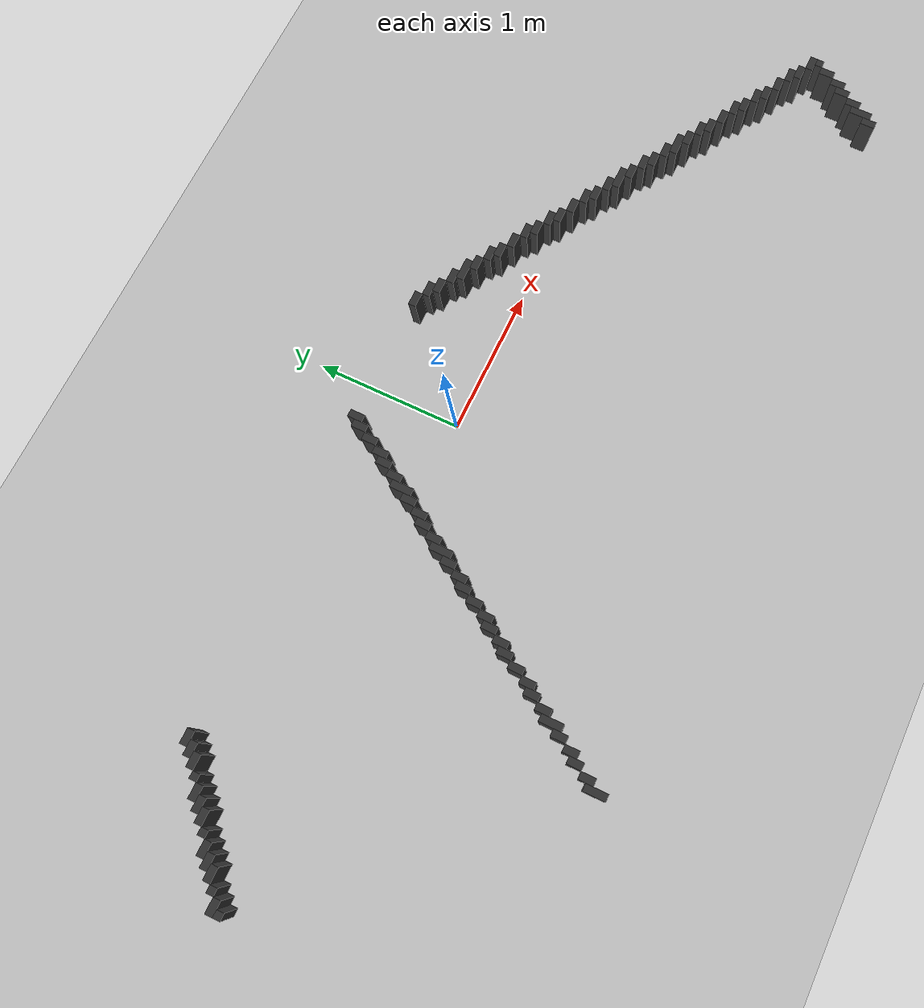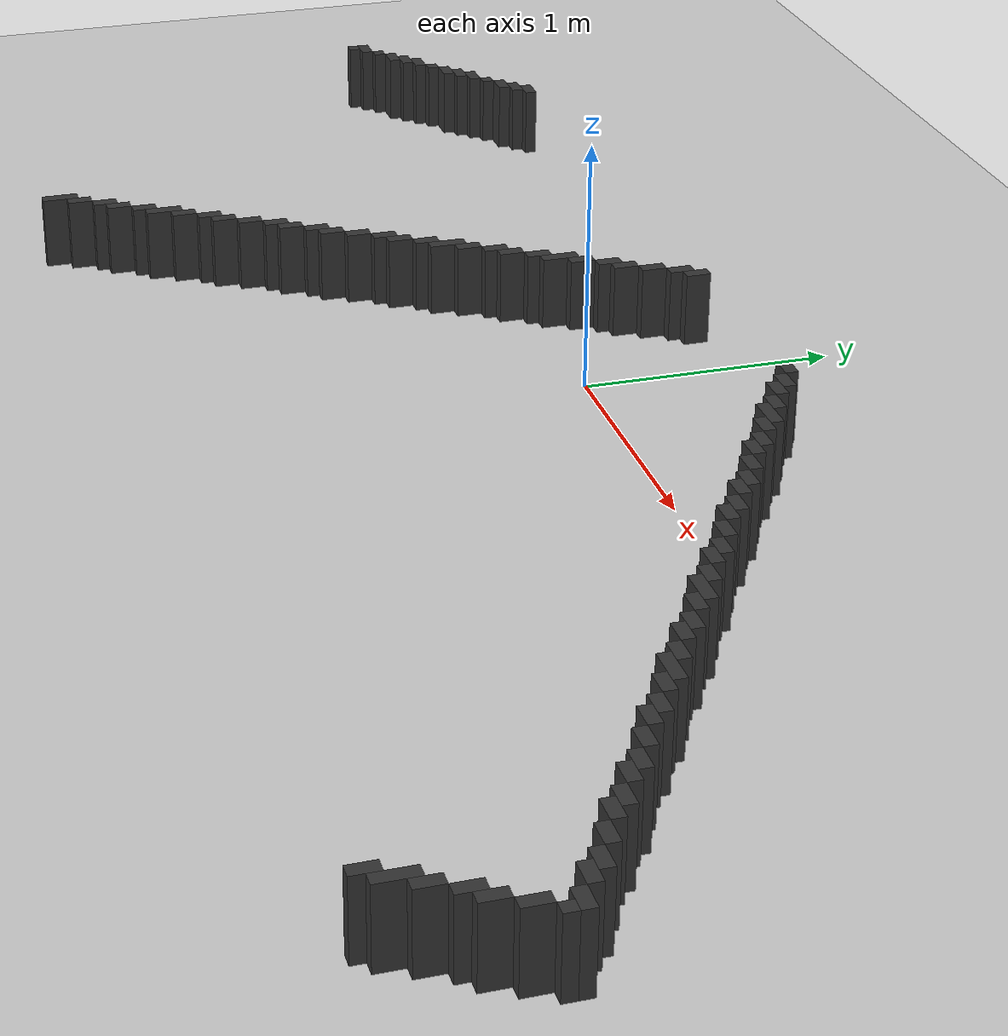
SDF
<sdf version="1.7">
 <world name="mapa_mundo">
  <model name="ground_plane">
   <static>true</static>
   <link name="link">
    <collision name="collision">
     <geometry><plane><normal>0 0 1</normal><size>10 10</size></plane></geometry>
     <surface><friction><ode><mu>100</mu><mu2>50</mu2></ode></friction></surface>
    </collision>
    <visual name="visual">
     <geometry><plane><normal>0 0 1</normal><size>10 10</size></plane></geometry>
     <material>
      <ambient>0.8 0.8 0.8 1</ambient>
      <diffuse>0.8 0.8 0.8 1</diffuse>
      <specular>0.8 0.8 0.8 1</specular>
     </material>
    </visual>
   </link>
  </model>
  <model name="wall_171">
   <static>true</static>
   <link name="link">
    <collision name="collision"><geometry><box><size>0.05 0.1 0.3</size></box></geometry></collision>
    <visual name="visual">
     <geometry><box><size>0.05 0.1 0.3</size></box></geometry>
     <material><ambient>0.2 0.2 0.2 1</ambient><diffuse>0.2 0.2 0.2 1</diffuse></material>
    </visual>
    <pose>-0.275 0.55 0.15 0 0 0</pose>
   </link>
  </model>
  <model name="wall_172">
   <static>true</static>
   <link name="link">
    <collision name="collision"><geometry><box><size>0.1 0.05 0.3</size></box></geometry></collision>
    <visual name="visual">
     <geometry><box><size>0.1 0.05 0.3</size></box></geometry>
     <material><ambient>0.2 0.2 0.2 1</ambient><diffuse>0.2 0.2 0.2 1</diffuse></material>
    </visual>
    <pose>0.6000000000000001 0.5750000000000001 0.15 0 0 0</pose>
   </link>
  </model>
  <model name="wall_173">
   <static>true</static>
   <link name="link">
    <collision name="collision"><geometry><box><size>0.1 0.05 0.3</size></box></geometry></collision>
    <visual name="visual">
     <geometry><box><size>0.1 0.05 0.3</size></box></geometry>
     <material><ambient>0.2 0.2 0.2 1</ambient><diffuse>0.2 0.2 0.2 1</diffuse></material>
    </visual>
    <pose>-2.45 0.525 0.15 0 0 0</pose>
   </link>
  </model>
  <model name="wall_174">
   <static>true</static>
   <link name="link">
    <collision name="collision"><geometry><box><size>0.05 0.1 0.3</size></box></geometry></collision>
    <visual name="visual">
     <geometry><box><size>0.05 0.1 0.3</size></box></geometry>
     <material><ambient>0.2 0.2 0.2 1</ambient><diffuse>0.2 0.2 0.2 1</diffuse></material>
    </visual>
    <pose>-0.325 0.5 0.15 0 0 0</pose>
   </link>
  </model>
  <model name="wall_175">
   <static>true</static>
   <link name="link">
    <collision name="collision"><geometry><box><size>0.1 0.05 0.3</size></box></geometry></collision>
    <visual name="visual">
     <geometry><box><size>0.1 0.05 0.3</size></box></geometry>
     <material><ambient>0.2 0.2 0.2 1</ambient><diffuse>0.2 0.2 0.2 1</diffuse></material>
    </visual>
    <pose>0.7000000000000001 0.525 0.15 0 0 0</pose>
   </link>
  </model>
  <model name="wall_176">
   <static>true</static>
   <link name="link">
    <collision name="collision"><geometry><box><size>0.1 0.05 0.3</size></box></geometry></collision>
    <visual name="visual">
     <geometry><box><size>0.1 0.05 0.3</size></box></geometry>
     <material><ambient>0.2 0.2 0.2 1</ambient><diffuse>0.2 0.2 0.2 1</diffuse></material>
    </visual>
    <pose>-2.5 0.47500000000000003 0.15 0 0 0</pose>
   </link>
  </model>
  <model name="wall_177">
   <static>true</static>
   <link name="link">
    <collision name="collision"><geometry><box><size>0.1 0.05 0.3</size></box></geometry></collision>
    <visual name="visual">
     <geometry><box><size>0.1 0.05 0.3</size></box></geometry>
     <material><ambient>0.2 0.2 0.2 1</ambient><diffuse>0.2 0.2 0.2 1</diffuse></material>
    </visual>
    <pose>0.75 0.47500000000000003 0.15 0 0 0</pose>
   </link>
  </model>
  <model name="wall_178">
   <static>true</static>
   <link name="link">
    <collision name="collision"><geometry><box><size>0.1 0.05 0.3</size></box></geometry></collision>
    <visual name="visual">
     <geometry><box><size>0.1 0.05 0.3</size></box></geometry>
     <material><ambient>0.2 0.2 0.2 1</ambient><diffuse>0.2 0.2 0.2 1</diffuse></material>
    </visual>
    <pose>-2.5500000000000003 0.42500000000000004 0.15 0 0 0</pose>
   </link>
  </model>
  <model name="wall_179">
   <static>true</static>
   <link name="link">
    <collision name="collision"><geometry><box><size>0.05 0.1 0.3</size></box></geometry></collision>
    <visual name="visual">
     <geometry><box><size>0.05 0.1 0.3</size></box></geometry>
     <material><ambient>0.2 0.2 0.2 1</ambient><diffuse>0.2 0.2 0.2 1</diffuse></material>
    </visual>
    <pose>-0.375 0.4 0.15 0 0 0</pose>
   </link>
  </model>
  <model name="wall_180">
   <static>true</static>
   <link name="link">
    <collision name="collision"><geometry><box><size>0.1 0.05 0.3</size></box></geometry></collision>
    <visual name="visual">
     <geometry><box><size>0.1 0.05 0.3</size></box></geometry>
     <material><ambient>0.2 0.2 0.2 1</ambient><diffuse>0.2 0.2 0.2 1</diffuse></material>
    </visual>
    <pose>0.8500000000000001 0.42500000000000004 0.15 0 0 0</pose>
   </link>
  </model>
  <model name="wall_181">
   <static>true</static>
   <link name="link">
    <collision name="collision"><geometry><box><size>0.05 0.05 0.3</size></box></geometry></collision>
    <visual name="visual">
     <geometry><box><size>0.05 0.05 0.3</size></box></geometry>
     <material><ambient>0.2 0.2 0.2 1</ambient><diffuse>0.2 0.2 0.2 1</diffuse></material>
    </visual>
    <pose>-2.625 0.375 0.15 0 0 0</pose>
   </link>
  </model>
  <model name="wall_182">
   <static>true</static>
   <link name="link">
    <collision name="collision">
     <geometry><box><size>0.15000000000000002 0.05 0.3</size></box></geometry>
    </collision>
    <visual name="visual">
     <geometry><box><size>0.15000000000000002 0.05 0.3</size></box></geometry>
     <material><ambient>0.2 0.2 0.2 1</ambient><diffuse>0.2 0.2 0.2 1</diffuse></material>
    </visual>
    <pose>0.925 0.375 0.15 0 0 0</pose>
   </link>
  </model>
  <model name="wall_183">
   <static>true</static>
   <link name="link">
    <collision name="collision"><geometry><box><size>0.1 0.05 0.3</size></box></geometry></collision>
    <visual name="visual">
     <geometry><box><size>0.1 0.05 0.3</size></box></geometry>
     <material><ambient>0.2 0.2 0.2 1</ambient><diffuse>0.2 0.2 0.2 1</diffuse></material>
    </visual>
    <pose>-2.7 0.325 0.15 0 0 0</pose>
   </link>
  </model>
  <model name="wall_184">
   <static>true</static>
   <link name="link">
    <collision name="collision"><geometry><box><size>0.05 0.1 0.3</size></box></geometry></collision>
    <visual name="visual">
     <geometry><box><size>0.05 0.1 0.3</size></box></geometry>
     <material><ambient>0.2 0.2 0.2 1</ambient><diffuse>0.2 0.2 0.2 1</diffuse></material>
    </visual>
    <pose>-0.42500000000000004 0.30000000000000004 0.15 0 0 0</pose>
   </link>
  </model>
  <model name="wall_185">
   <static>true</static>
   <link name="link">
    <collision name="collision"><geometry><box><size>0.1 0.05 0.3</size></box></geometry></collision>
    <visual name="visual">
     <geometry><box><size>0.1 0.05 0.3</size></box></geometry>
     <material><ambient>0.2 0.2 0.2 1</ambient><diffuse>0.2 0.2 0.2 1</diffuse></material>
    </visual>
    <pose>1.0 0.325 0.15 0 0 0</pose>
   </link>
  </model>
  <model name="wall_186">
   <static>true</static>
   <link name="link">
    <collision name="collision"><geometry><box><size>0.1 0.05 0.3</size></box></geometry></collision>
    <visual name="visual">
     <geometry><box><size>0.1 0.05 0.3</size></box></geometry>
     <material><ambient>0.2 0.2 0.2 1</ambient><diffuse>0.2 0.2 0.2 1</diffuse></material>
    </visual>
    <pose>-2.75 0.275 0.15 0 0 0</pose>
   </link>
  </model>
  <model name="wall_187">
   <static>true</static>
   <link name="link">
    <collision name="collision"><geometry><box><size>0.05 0.1 0.3</size></box></geometry></collision>
    <visual name="visual">
     <geometry><box><size>0.05 0.1 0.3</size></box></geometry>
     <material><ambient>0.2 0.2 0.2 1</ambient><diffuse>0.2 0.2 0.2 1</diffuse></material>
    </visual>
    <pose>-0.47500000000000003 0.25 0.15 0 0 0</pose>
   </link>
  </model>
  <model name="wall_188">
   <static>true</static>
   <link name="link">
    <collision name="collision"><geometry><box><size>0.1 0.05 0.3</size></box></geometry></collision>
    <visual name="visual">
     <geometry><box><size>0.1 0.05 0.3</size></box></geometry>
     <material><ambient>0.2 0.2 0.2 1</ambient><diffuse>0.2 0.2 0.2 1</diffuse></material>
    </visual>
    <pose>1.1 0.275 0.15 0 0 0</pose>
   </link>
  </model>
  <model name="wall_189">
   <static>true</static>
   <link name="link">
    <collision name="collision"><geometry><box><size>0.1 0.05 0.3</size></box></geometry></collision>
    <visual name="visual">
     <geometry><box><size>0.1 0.05 0.3</size></box></geometry>
     <material><ambient>0.2 0.2 0.2 1</ambient><diffuse>0.2 0.2 0.2 1</diffuse></material>
    </visual>
    <pose>-2.8000000000000003 0.225 0.15 0 0 0</pose>
   </link>
  </model>
  <model name="wall_190">
   <static>true</static>
   <link name="link">
    <collision name="collision"><geometry><box><size>0.1 0.05 0.3</size></box></geometry></collision>
    <visual name="visual">
     <geometry><box><size>0.1 0.05 0.3</size></box></geometry>
     <material><ambient>0.2 0.2 0.2 1</ambient><diffuse>0.2 0.2 0.2 1</diffuse></material>
    </visual>
    <pose>1.1500000000000001 0.225 0.15 0 0 0</pose>
   </link>
  </model>
  <model name="wall_191">
   <static>true</static>
   <link name="link">
    <collision name="collision"><geometry><box><size>0.05 0.05 0.3</size></box></geometry></collision>
    <visual name="visual">
     <geometry><box><size>0.05 0.05 0.3</size></box></geometry>
     <material><ambient>0.2 0.2 0.2 1</ambient><diffuse>0.2 0.2 0.2 1</diffuse></material>
    </visual>
    <pose>-2.875 0.17500000000000002 0.15 0 0 0</pose>
   </link>
  </model>
  <model name="wall_192">
   <static>true</static>
   <link name="link">
    <collision name="collision"><geometry><box><size>0.05 0.1 0.3</size></box></geometry></collision>
    <visual name="visual">
     <geometry><box><size>0.05 0.1 0.3</size></box></geometry>
     <material><ambient>0.2 0.2 0.2 1</ambient><diffuse>0.2 0.2 0.2 1</diffuse></material>
    </visual>
    <pose>-0.525 0.15000000000000002 0.15 0 0 0</pose>
   </link>
  </model>
  <model name="wall_193">
   <static>true</static>
   <link name="link">
    <collision name="collision"><geometry><box><size>0.1 0.05 0.3</size></box></geometry></collision>
    <visual name="visual">
     <geometry><box><size>0.1 0.05 0.3</size></box></geometry>
     <material><ambient>0.2 0.2 0.2 1</ambient><diffuse>0.2 0.2 0.2 1</diffuse></material>
    </visual>
    <pose>1.25 0.17500000000000002 0.15 0 0 0</pose>
   </link>
  </model>
  <model name="wall_194">
   <static>true</static>
   <link name="link">
    <collision name="collision"><geometry><box><size>0.1 0.05 0.3</size></box></geometry></collision>
    <visual name="visual">
     <geometry><box><size>0.1 0.05 0.3</size></box></geometry>
     <material><ambient>0.2 0.2 0.2 1</ambient><diffuse>0.2 0.2 0.2 1</diffuse></material>
    </visual>
    <pose>-2.95 0.125 0.15 0 0 0</pose>
   </link>
  </model>
  <model name="wall_195">
   <static>true</static>
   <link name="link">
    <collision name="collision">
     <geometry><box><size>0.05 0.15000000000000002 0.3</size></box></geometry>
    </collision>
    <visual name="visual">
     <geometry><box><size>0.05 0.15000000000000002 0.3</size></box></geometry>
     <material><ambient>0.2 0.2 0.2 1</ambient><diffuse>0.2 0.2 0.2 1</diffuse></material>
    </visual>
    <pose>-0.5750000000000001 0.07500000000000001 0.15 0 0 0</pose>
   </link>
  </model>
  <model name="wall_196">
   <static>true</static>
   <link name="link">
    <collision name="collision"><geometry><box><size>0.1 0.05 0.3</size></box></geometry></collision>
    <visual name="visual">
     <geometry><box><size>0.1 0.05 0.3</size></box></geometry>
     <material><ambient>0.2 0.2 0.2 1</ambient><diffuse>0.2 0.2 0.2 1</diffuse></material>
    </visual>
    <pose>1.35 0.125 0.15 0 0 0</pose>
   </link>
  </model>
  <model name="wall_197">
   <static>true</static>
   <link name="link">
    <collision name="collision"><geometry><box><size>0.1 0.05 0.3</size></box></geometry></collision>
    <visual name="visual">
     <geometry><box><size>0.1 0.05 0.3</size></box></geometry>
     <material><ambient>0.2 0.2 0.2 1</ambient><diffuse>0.2 0.2 0.2 1</diffuse></material>
    </visual>
    <pose>-3.0 0.07500000000000001 0.15 0 0 0</pose>
   </link>
  </model>
  <model name="wall_198">
   <static>true</static>
   <link name="link">
    <collision name="collision"><geometry><box><size>0.1 0.05 0.3</size></box></geometry></collision>
    <visual name="visual">
     <geometry><box><size>0.1 0.05 0.3</size></box></geometry>
     <material><ambient>0.2 0.2 0.2 1</ambient><diffuse>0.2 0.2 0.2 1</diffuse></material>
    </visual>
    <pose>1.4000000000000001 0.07500000000000001 0.15 0 0 0</pose>
   </link>
  </model>
  <model name="wall_199">
   <static>true</static>
   <link name="link">
    <collision name="collision"><geometry><box><size>0.1 0.05 0.3</size></box></geometry></collision>
    <visual name="visual">
     <geometry><box><size>0.1 0.05 0.3</size></box></geometry>
     <material><ambient>0.2 0.2 0.2 1</ambient><diffuse>0.2 0.2 0.2 1</diffuse></material>
    </visual>
    <pose>-3.0500000000000003 0.025 0.15 0 0 0</pose>
   </link>
  </model>
  <model name="wall_200">
   <static>true</static>
   <link name="link">
    <collision name="collision"><geometry><box><size>0.05 0.1 0.3</size></box></geometry></collision>
    <visual name="visual">
     <geometry><box><size>0.05 0.1 0.3</size></box></geometry>
     <material><ambient>0.2 0.2 0.2 1</ambient><diffuse>0.2 0.2 0.2 1</diffuse></material>
    </visual>
    <pose>-0.625 0.0 0.15 0 0 0</pose>
   </link>
  </model>
  <model name="wall_201">
   <static>true</static>
   <link name="link">
    <collision name="collision"><geometry><box><size>0.1 0.05 0.3</size></box></geometry></collision>
    <visual name="visual">
     <geometry><box><size>0.1 0.05 0.3</size></box></geometry>
     <material><ambient>0.2 0.2 0.2 1</ambient><diffuse>0.2 0.2 0.2 1</diffuse></material>
    </visual>
    <pose>1.5 0.025 0.15 0 0 0</pose>
   </link>
  </model>
  <model name="wall_202">
   <static>true</static>
   <link name="link">
    <collision name="collision"><geometry><box><size>0.05 0.05 0.3</size></box></geometry></collision>
    <visual name="visual">
     <geometry><box><size>0.05 0.05 0.3</size></box></geometry>
     <material><ambient>0.2 0.2 0.2 1</ambient><diffuse>0.2 0.2 0.2 1</diffuse></material>
    </visual>
    <pose>-3.125 -0.025 0.15 0 0 0</pose>
   </link>
  </model>
  <model name="wall_203">
   <static>true</static>
   <link name="link">
    <collision name="collision"><geometry><box><size>0.1 0.05 0.3</size></box></geometry></collision>
    <visual name="visual">
     <geometry><box><size>0.1 0.05 0.3</size></box></geometry>
     <material><ambient>0.2 0.2 0.2 1</ambient><diffuse>0.2 0.2 0.2 1</diffuse></material>
    </visual>
    <pose>1.55 -0.025 0.15 0 0 0</pose>
   </link>
  </model>
  <model name="wall_204">
   <static>true</static>
   <link name="link">
    <collision name="collision"><geometry><box><size>0.1 0.05 0.3</size></box></geometry></collision>
    <visual name="visual">
     <geometry><box><size>0.1 0.05 0.3</size></box></geometry>
     <material><ambient>0.2 0.2 0.2 1</ambient><diffuse>0.2 0.2 0.2 1</diffuse></material>
    </visual>
    <pose>-3.2 -0.07500000000000001 0.15 0 0 0</pose>
   </link>
  </model>
  <model name="wall_205">
   <static>true</static>
   <link name="link">
    <collision name="collision"><geometry><box><size>0.05 0.1 0.3</size></box></geometry></collision>
    <visual name="visual">
     <geometry><box><size>0.05 0.1 0.3</size></box></geometry>
     <material><ambient>0.2 0.2 0.2 1</ambient><diffuse>0.2 0.2 0.2 1</diffuse></material>
    </visual>
    <pose>-0.675 -0.1 0.15 0 0 0</pose>
   </link>
  </model>
  <model name="wall_206">
   <static>true</static>
   <link name="link">
    <collision name="collision"><geometry><box><size>0.1 0.05 0.3</size></box></geometry></collision>
    <visual name="visual">
     <geometry><box><size>0.1 0.05 0.3</size></box></geometry>
     <material><ambient>0.2 0.2 0.2 1</ambient><diffuse>0.2 0.2 0.2 1</diffuse></material>
    </visual>
    <pose>1.6500000000000001 -0.07500000000000001 0.15 0 0 0</pose>
   </link>
  </model>
  <model name="wall_207">
   <static>true</static>
   <link name="link">
    <collision name="collision"><geometry><box><size>0.05 0.05 0.3</size></box></geometry></collision>
    <visual name="visual">
     <geometry><box><size>0.05 0.05 0.3</size></box></geometry>
     <material><ambient>0.2 0.2 0.2 1</ambient><diffuse>0.2 0.2 0.2 1</diffuse></material>
    </visual>
    <pose>-3.225 -0.125 0.15 0 0 0</pose>
   </link>
  </model>
  <model name="wall_208">
   <static>true</static>
   <link name="link">
    <collision name="collision"><geometry><box><size>0.05 0.1 0.3</size></box></geometry></collision>
    <visual name="visual">
     <geometry><box><size>0.05 0.1 0.3</size></box></geometry>
     <material><ambient>0.2 0.2 0.2 1</ambient><diffuse>0.2 0.2 0.2 1</diffuse></material>
    </visual>
    <pose>-0.7250000000000001 -0.15000000000000002 0.15 0 0 0</pose>
   </link>
  </model>
  <model name="wall_209">
   <static>true</static>
   <link name="link">
    <collision name="collision"><geometry><box><size>0.1 0.05 0.3</size></box></geometry></collision>
    <visual name="visual">
     <geometry><box><size>0.1 0.05 0.3</size></box></geometry>
     <material><ambient>0.2 0.2 0.2 1</ambient><diffuse>0.2 0.2 0.2 1</diffuse></material>
    </visual>
    <pose>1.75 -0.125 0.15 0 0 0</pose>
   </link>
  </model>
  <model name="wall_210">
   <static>true</static>
   <link name="link">
    <collision name="collision"><geometry><box><size>0.1 0.05 0.3</size></box></geometry></collision>
    <visual name="visual">
     <geometry><box><size>0.1 0.05 0.3</size></box></geometry>
     <material><ambient>0.2 0.2 0.2 1</ambient><diffuse>0.2 0.2 0.2 1</diffuse></material>
    </visual>
    <pose>1.8 -0.17500000000000002 0.15 0 0 0</pose>
   </link>
  </model>
  <model name="wall_211">
   <static>true</static>
   <link name="link">
    <collision name="collision"><geometry><box><size>0.05 0.1 0.3</size></box></geometry></collision>
    <visual name="visual">
     <geometry><box><size>0.05 0.1 0.3</size></box></geometry>
     <material><ambient>0.2 0.2 0.2 1</ambient><diffuse>0.2 0.2 0.2 1</diffuse></material>
    </visual>
    <pose>-0.775 -0.25 0.15 0 0 0</pose>
   </link>
  </model>
  <model name="wall_212">
   <static>true</static>
   <link name="link">
    <collision name="collision"><geometry><box><size>0.1 0.05 0.3</size></box></geometry></collision>
    <visual name="visual">
     <geometry><box><size>0.1 0.05 0.3</size></box></geometry>
     <material><ambient>0.2 0.2 0.2 1</ambient><diffuse>0.2 0.2 0.2 1</diffuse></material>
    </visual>
    <pose>1.9000000000000001 -0.225 0.15 0 0 0</pose>
   </link>
  </model>
  <model name="wall_213">
   <static>true</static>
   <link name="link">
    <collision name="collision">
     <geometry><box><size>0.05 0.15000000000000002 0.3</size></box></geometry>
    </collision>
    <visual name="visual">
     <geometry><box><size>0.05 0.15000000000000002 0.3</size></box></geometry>
     <material><ambient>0.2 0.2 0.2 1</ambient><diffuse>0.2 0.2 0.2 1</diffuse></material>
    </visual>
    <pose>-0.8250000000000001 -0.325 0.15 0 0 0</pose>
   </link>
  </model>
  <model name="wall_214">
   <static>true</static>
   <link name="link">
    <collision name="collision">
     <geometry><box><size>0.15000000000000002 0.05 0.3</size></box></geometry>
    </collision>
    <visual name="visual">
     <geometry><box><size>0.15000000000000002 0.05 0.3</size></box></geometry>
     <material><ambient>0.2 0.2 0.2 1</ambient><diffuse>0.2 0.2 0.2 1</diffuse></material>
    </visual>
    <pose>1.975 -0.275 0.15 0 0 0</pose>
   </link>
  </model>
  <model name="wall_215">
   <static>true</static>
   <link name="link">
    <collision name="collision"><geometry><box><size>0.1 0.05 0.3</size></box></geometry></collision>
    <visual name="visual">
     <geometry><box><size>0.1 0.05 0.3</size></box></geometry>
     <material><ambient>0.2 0.2 0.2 1</ambient><diffuse>0.2 0.2 0.2 1</diffuse></material>
    </visual>
    <pose>2.0500000000000003 -0.325 0.15 0 0 0</pose>
   </link>
  </model>
  <model name="wall_216">
   <static>true</static>
   <link name="link">
    <collision name="collision"><geometry><box><size>0.05 0.1 0.3</size></box></geometry></collision>
    <visual name="visual">
     <geometry><box><size>0.05 0.1 0.3</size></box></geometry>
     <material><ambient>0.2 0.2 0.2 1</ambient><diffuse>0.2 0.2 0.2 1</diffuse></material>
    </visual>
    <pose>-0.875 -0.4 0.15 0 0 0</pose>
   </link>
  </model>
  <model name="wall_217">
   <static>true</static>
   <link name="link">
    <collision name="collision"><geometry><box><size>0.1 0.05 0.3</size></box></geometry></collision>
    <visual name="visual">
     <geometry><box><size>0.1 0.05 0.3</size></box></geometry>
     <material><ambient>0.2 0.2 0.2 1</ambient><diffuse>0.2 0.2 0.2 1</diffuse></material>
    </visual>
    <pose>2.15 -0.375 0.15 0 0 0</pose>
   </link>
  </model>
  <model name="wall_218">
   <static>true</static>
   <link name="link">
    <collision name="collision"><geometry><box><size>0.1 0.05 0.3</size></box></geometry></collision>
    <visual name="visual">
     <geometry><box><size>0.1 0.05 0.3</size></box></geometry>
     <material><ambient>0.2 0.2 0.2 1</ambient><diffuse>0.2 0.2 0.2 1</diffuse></material>
    </visual>
    <pose>2.2 -0.42500000000000004 0.15 0 0 0</pose>
   </link>
  </model>
  <model name="wall_219">
   <static>true</static>
   <link name="link">
    <collision name="collision"><geometry><box><size>0.05 0.1 0.3</size></box></geometry></collision>
    <visual name="visual">
     <geometry><box><size>0.05 0.1 0.3</size></box></geometry>
     <material><ambient>0.2 0.2 0.2 1</ambient><diffuse>0.2 0.2 0.2 1</diffuse></material>
    </visual>
    <pose>-0.925 -0.5 0.15 0 0 0</pose>
   </link>
  </model>
  <model name="wall_220">
   <static>true</static>
   <link name="link">
    <collision name="collision"><geometry><box><size>0.1 0.05 0.3</size></box></geometry></collision>
    <visual name="visual">
     <geometry><box><size>0.1 0.05 0.3</size></box></geometry>
     <material><ambient>0.2 0.2 0.2 1</ambient><diffuse>0.2 0.2 0.2 1</diffuse></material>
    </visual>
    <pose>2.3000000000000003 -0.47500000000000003 0.15 0 0 0</pose>
   </link>
  </model>
  <model name="wall_221">
   <static>true</static>
   <link name="link">
    <collision name="collision"><geometry><box><size>0.05 0.1 0.3</size></box></geometry></collision>
    <visual name="visual">
     <geometry><box><size>0.05 0.1 0.3</size></box></geometry>
     <material><ambient>0.2 0.2 0.2 1</ambient><diffuse>0.2 0.2 0.2 1</diffuse></material>
    </visual>
    <pose>-0.9750000000000001 -0.55 0.15 0 0 0</pose>
   </link>
  </model>
  <model name="wall_222">
   <static>true</static>
   <link name="link">
    <collision name="collision">
     <geometry><box><size>0.15000000000000002 0.05 0.3</size></box></geometry>
    </collision>
    <visual name="visual">
     <geometry><box><size>0.15000000000000002 0.05 0.3</size></box></geometry>
     <material><ambient>0.2 0.2 0.2 1</ambient><diffuse>0.2 0.2 0.2 1</diffuse></material>
    </visual>
    <pose>2.375 -0.525 0.15 0 0 0</pose>
   </link>
  </model>
  <model name="wall_223">
   <static>true</static>
   <link name="link">
    <collision name="collision"><geometry><box><size>0.1 0.05 0.3</size></box></geometry></collision>
    <visual name="visual">
     <geometry><box><size>0.1 0.05 0.3</size></box></geometry>
     <material><ambient>0.2 0.2 0.2 1</ambient><diffuse>0.2 0.2 0.2 1</diffuse></material>
    </visual>
    <pose>2.45 -0.5750000000000001 0.15 0 0 0</pose>
   </link>
  </model>
  <model name="wall_224">
   <static>true</static>
   <link name="link">
    <collision name="collision"><geometry><box><size>0.05 0.1 0.3</size></box></geometry></collision>
    <visual name="visual">
     <geometry><box><size>0.05 0.1 0.3</size></box></geometry>
     <material><ambient>0.2 0.2 0.2 1</ambient><diffuse>0.2 0.2 0.2 1</diffuse></material>
    </visual>
    <pose>-1.0250000000000001 -0.65 0.15 0 0 0</pose>
   </link>
  </model>
  <model name="wall_225">
   <static>true</static>
   <link name="link">
    <collision name="collision"><geometry><box><size>0.1 0.05 0.3</size></box></geometry></collision>
    <visual name="visual">
     <geometry><box><size>0.1 0.05 0.3</size></box></geometry>
     <material><ambient>0.2 0.2 0.2 1</ambient><diffuse>0.2 0.2 0.2 1</diffuse></material>
    </visual>
    <pose>2.5500000000000003 -0.625 0.15 0 0 0</pose>
   </link>
  </model>
  <model name="wall_226">
   <static>true</static>
   <link name="link">
    <collision name="collision"><geometry><box><size>0.1 0.05 0.3</size></box></geometry></collision>
    <visual name="visual">
     <geometry><box><size>0.1 0.05 0.3</size></box></geometry>
     <material><ambient>0.2 0.2 0.2 1</ambient><diffuse>0.2 0.2 0.2 1</diffuse></material>
    </visual>
    <pose>2.6 -0.675 0.15 0 0 0</pose>
   </link>
  </model>
  <model name="wall_227">
   <static>true</static>
   <link name="link">
    <collision name="collision"><geometry><box><size>0.05 0.1 0.3</size></box></geometry></collision>
    <visual name="visual">
     <geometry><box><size>0.05 0.1 0.3</size></box></geometry>
     <material><ambient>0.2 0.2 0.2 1</ambient><diffuse>0.2 0.2 0.2 1</diffuse></material>
    </visual>
    <pose>-1.075 -0.75 0.15 0 0 0</pose>
   </link>
  </model>
  <model name="wall_228">
   <static>true</static>
   <link name="link">
    <collision name="collision"><geometry><box><size>0.1 0.05 0.3</size></box></geometry></collision>
    <visual name="visual">
     <geometry><box><size>0.1 0.05 0.3</size></box></geometry>
     <material><ambient>0.2 0.2 0.2 1</ambient><diffuse>0.2 0.2 0.2 1</diffuse></material>
    </visual>
    <pose>2.7 -0.7250000000000001 0.15 0 0 0</pose>
   </link>
  </model>
  <model name="wall_229">
   <static>true</static>
   <link name="link">
    <collision name="collision"><geometry><box><size>0.05 0.1 0.3</size></box></geometry></collision>
    <visual name="visual">
     <geometry><box><size>0.05 0.1 0.3</size></box></geometry>
     <material><ambient>0.2 0.2 0.2 1</ambient><diffuse>0.2 0.2 0.2 1</diffuse></material>
    </visual>
    <pose>-1.125 -0.8 0.15 0 0 0</pose>
   </link>
  </model>
  <model name="wall_230">
   <static>true</static>
   <link name="link">
    <collision name="collision"><geometry><box><size>0.1 0.05 0.3</size></box></geometry></collision>
    <visual name="visual">
     <geometry><box><size>0.1 0.05 0.3</size></box></geometry>
     <material><ambient>0.2 0.2 0.2 1</ambient><diffuse>0.2 0.2 0.2 1</diffuse></material>
    </visual>
    <pose>2.8000000000000003 -0.775 0.15 0 0 0</pose>
   </link>
  </model>
  <model name="wall_231">
   <static>true</static>
   <link name="link">
    <collision name="collision"><geometry><box><size>0.1 0.05 0.3</size></box></geometry></collision>
    <visual name="visual">
     <geometry><box><size>0.1 0.05 0.3</size></box></geometry>
     <material><ambient>0.2 0.2 0.2 1</ambient><diffuse>0.2 0.2 0.2 1</diffuse></material>
    </visual>
    <pose>2.85 -0.8250000000000001 0.15 0 0 0</pose>
   </link>
  </model>
  <model name="wall_232">
   <static>true</static>
   <link name="link">
    <collision name="collision"><geometry><box><size>0.05 0.1 0.3</size></box></geometry></collision>
    <visual name="visual">
     <geometry><box><size>0.05 0.1 0.3</size></box></geometry>
     <material><ambient>0.2 0.2 0.2 1</ambient><diffuse>0.2 0.2 0.2 1</diffuse></material>
    </visual>
    <pose>-1.175 -0.9 0.15 0 0 0</pose>
   </link>
  </model>
  <model name="wall_233">
   <static>true</static>
   <link name="link">
    <collision name="collision"><geometry><box><size>0.1 0.05 0.3</size></box></geometry></collision>
    <visual name="visual">
     <geometry><box><size>0.1 0.05 0.3</size></box></geometry>
     <material><ambient>0.2 0.2 0.2 1</ambient><diffuse>0.2 0.2 0.2 1</diffuse></material>
    </visual>
    <pose>2.95 -0.875 0.15 0 0 0</pose>
   </link>
  </model>
  <model name="wall_234">
   <static>true</static>
   <link name="link">
    <collision name="collision"><geometry><box><size>0.05 0.1 0.3</size></box></geometry></collision>
    <visual name="visual">
     <geometry><box><size>0.05 0.1 0.3</size></box></geometry>
     <material><ambient>0.2 0.2 0.2 1</ambient><diffuse>0.2 0.2 0.2 1</diffuse></material>
    </visual>
    <pose>-1.225 -0.9500000000000001 0.15 0 0 0</pose>
   </link>
  </model>
  <model name="wall_235">
   <static>true</static>
   <link name="link">
    <collision name="collision"><geometry><box><size>0.1 0.05 0.3</size></box></geometry></collision>
    <visual name="visual">
     <geometry><box><size>0.1 0.05 0.3</size></box></geometry>
     <material><ambient>0.2 0.2 0.2 1</ambient><diffuse>0.2 0.2 0.2 1</diffuse></material>
    </visual>
    <pose>3.0 -0.925 0.15 0 0 0</pose>
   </link>
  </model>
  <model name="wall_236">
   <static>true</static>
   <link name="link">
    <collision name="collision"><geometry><box><size>0.1 0.05 0.3</size></box></geometry></collision>
    <visual name="visual">
     <geometry><box><size>0.1 0.05 0.3</size></box></geometry>
     <material><ambient>0.2 0.2 0.2 1</ambient><diffuse>0.2 0.2 0.2 1</diffuse></material>
    </visual>
    <pose>3.1 -0.9750000000000001 0.15 0 0 0</pose>
   </link>
  </model>
  <model name="wall_237">
   <static>true</static>
   <link name="link">
    <collision name="collision"><geometry><box><size>0.05 0.1 0.3</size></box></geometry></collision>
    <visual name="visual">
     <geometry><box><size>0.05 0.1 0.3</size></box></geometry>
     <material><ambient>0.2 0.2 0.2 1</ambient><diffuse>0.2 0.2 0.2 1</diffuse></material>
    </visual>
    <pose>-1.2750000000000001 -1.05 0.15 0 0 0</pose>
   </link>
  </model>
  <model name="wall_238">
   <static>true</static>
   <link name="link">
    <collision name="collision"><geometry><box><size>0.1 0.05 0.3</size></box></geometry></collision>
    <visual name="visual">
     <geometry><box><size>0.1 0.05 0.3</size></box></geometry>
     <material><ambient>0.2 0.2 0.2 1</ambient><diffuse>0.2 0.2 0.2 1</diffuse></material>
    </visual>
    <pose>3.2 -1.0250000000000001 0.15 0 0 0</pose>
   </link>
  </model>
  <model name="wall_239">
   <static>true</static>
   <link name="link">
    <collision name="collision"><geometry><box><size>0.1 0.05 0.3</size></box></geometry></collision>
    <visual name="visual">
     <geometry><box><size>0.1 0.05 0.3</size></box></geometry>
     <material><ambient>0.2 0.2 0.2 1</ambient><diffuse>0.2 0.2 0.2 1</diffuse></material>
    </visual>
    <pose>3.25 -1.075 0.15 0 0 0</pose>
   </link>
  </model>
  <model name="wall_240">
   <static>true</static>
   <link name="link">
    <collision name="collision"><geometry><box><size>0.05 0.1 0.3</size></box></geometry></collision>
    <visual name="visual">
     <geometry><box><size>0.05 0.1 0.3</size></box></geometry>
     <material><ambient>0.2 0.2 0.2 1</ambient><diffuse>0.2 0.2 0.2 1</diffuse></material>
    </visual>
    <pose>-1.3250000000000002 -1.1500000000000001 0.15 0 0 0</pose>
   </link>
  </model>
  <model name="wall_241">
   <static>true</static>
   <link name="link">
    <collision name="collision"><geometry><box><size>0.1 0.05 0.3</size></box></geometry></collision>
    <visual name="visual">
     <geometry><box><size>0.1 0.05 0.3</size></box></geometry>
     <material><ambient>0.2 0.2 0.2 1</ambient><diffuse>0.2 0.2 0.2 1</diffuse></material>
    </visual>
    <pose>3.35 -1.125 0.15 0 0 0</pose>
   </link>
  </model>
  <model name="wall_242">
   <static>true</static>
   <link name="link">
    <collision name="collision"><geometry><box><size>0.05 0.1 0.3</size></box></geometry></collision>
    <visual name="visual">
     <geometry><box><size>0.05 0.1 0.3</size></box></geometry>
     <material><ambient>0.2 0.2 0.2 1</ambient><diffuse>0.2 0.2 0.2 1</diffuse></material>
    </visual>
    <pose>-1.375 -1.2000000000000002 0.15 0 0 0</pose>
   </link>
  </model>
  <model name="wall_243">
   <static>true</static>
   <link name="link">
    <collision name="collision"><geometry><box><size>0.05 0.05 0.3</size></box></geometry></collision>
    <visual name="visual">
     <geometry><box><size>0.05 0.05 0.3</size></box></geometry>
     <material><ambient>0.2 0.2 0.2 1</ambient><diffuse>0.2 0.2 0.2 1</diffuse></material>
    </visual>
    <pose>3.375 -1.175 0.15 0 0 0</pose>
   </link>
  </model>
  <model name="wall_244">
   <static>true</static>
   <link name="link">
    <collision name="collision"><geometry><box><size>0.05 0.1 0.3</size></box></geometry></collision>
    <visual name="visual">
     <geometry><box><size>0.05 0.1 0.3</size></box></geometry>
     <material><ambient>0.2 0.2 0.2 1</ambient><diffuse>0.2 0.2 0.2 1</diffuse></material>
    </visual>
    <pose>3.325 -1.25 0.15 0 0 0</pose>
   </link>
  </model>
  <model name="wall_245">
   <static>true</static>
   <link name="link">
    <collision name="collision"><geometry><box><size>0.05 0.1 0.3</size></box></geometry></collision>
    <visual name="visual">
     <geometry><box><size>0.05 0.1 0.3</size></box></geometry>
     <material><ambient>0.2 0.2 0.2 1</ambient><diffuse>0.2 0.2 0.2 1</diffuse></material>
    </visual>
    <pose>-1.425 -1.3 0.15 0 0 0</pose>
   </link>
  </model>
  <model name="wall_246">
   <static>true</static>
   <link name="link">
    <collision name="collision">
     <geometry><box><size>0.05 0.15000000000000002 0.3</size></box></geometry>
    </collision>
    <visual name="visual">
     <geometry><box><size>0.05 0.15000000000000002 0.3</size></box></geometry>
     <material><ambient>0.2 0.2 0.2 1</ambient><diffuse>0.2 0.2 0.2 1</diffuse></material>
    </visual>
    <pose>-1.475 -1.375 0.15 0 0 0</pose>
   </link>
  </model>
  <model name="wall_247">
   <static>true</static>
   <link name="link">
    <collision name="collision"><geometry><box><size>0.05 0.1 0.3</size></box></geometry></collision>
    <visual name="visual">
     <geometry><box><size>0.05 0.1 0.3</size></box></geometry>
     <material><ambient>0.2 0.2 0.2 1</ambient><diffuse>0.2 0.2 0.2 1</diffuse></material>
    </visual>
    <pose>3.2750000000000004 -1.35 0.15 0 0 0</pose>
   </link>
  </model>
  <model name="wall_248">
   <static>true</static>
   <link name="link">
    <collision name="collision"><geometry><box><size>0.05 0.1 0.3</size></box></geometry></collision>
    <visual name="visual">
     <geometry><box><size>0.05 0.1 0.3</size></box></geometry>
     <material><ambient>0.2 0.2 0.2 1</ambient><diffuse>0.2 0.2 0.2 1</diffuse></material>
    </visual>
    <pose>3.225 -1.4000000000000001 0.15 0 0 0</pose>
   </link>
  </model>
  <model name="wall_249">
   <static>true</static>
   <link name="link">
    <collision name="collision"><geometry><box><size>0.05 0.1 0.3</size></box></geometry></collision>
    <visual name="visual">
     <geometry><box><size>0.05 0.1 0.3</size></box></geometry>
     <material><ambient>0.2 0.2 0.2 1</ambient><diffuse>0.2 0.2 0.2 1</diffuse></material>
    </visual>
    <pose>-1.5250000000000001 -1.4500000000000002 0.15 0 0 0</pose>
   </link>
  </model>
  <model name="wall_250">
   <static>true</static>
   <link name="link">
    <collision name="collision"><geometry><box><size>0.05 0.1 0.3</size></box></geometry></collision>
    <visual name="visual">
     <geometry><box><size>0.05 0.1 0.3</size></box></geometry>
     <material><ambient>0.2 0.2 0.2 1</ambient><diffuse>0.2 0.2 0.2 1</diffuse></material>
    </visual>
    <pose>3.1750000000000003 -1.5 0.15 0 0 0</pose>
   </link>
  </model>
  <model name="wall_251">
   <static>true</static>
   <link name="link">
    <collision name="collision"><geometry><box><size>0.05 0.1 0.3</size></box></geometry></collision>
    <visual name="visual">
     <geometry><box><size>0.05 0.1 0.3</size></box></geometry>
     <material><ambient>0.2 0.2 0.2 1</ambient><diffuse>0.2 0.2 0.2 1</diffuse></material>
    </visual>
    <pose>-1.5750000000000002 -1.55 0.15 0 0 0</pose>
   </link>
  </model>
  <model name="wall_252">
   <static>true</static>
   <link name="link">
    <collision name="collision">
     <geometry><box><size>0.05 0.15000000000000002 0.3</size></box></geometry>
    </collision>
    <visual name="visual">
     <geometry><box><size>0.05 0.15000000000000002 0.3</size></box></geometry>
     <material><ambient>0.2 0.2 0.2 1</ambient><diffuse>0.2 0.2 0.2 1</diffuse></material>
    </visual>
    <pose>3.125 -1.5750000000000002 0.15 0 0 0</pose>
   </link>
  </model>
  <model name="wall_253">
   <static>true</static>
   <link name="link">
    <collision name="collision"><geometry><box><size>0.05 0.1 0.3</size></box></geometry></collision>
    <visual name="visual">
     <geometry><box><size>0.05 0.1 0.3</size></box></geometry>
     <material><ambient>0.2 0.2 0.2 1</ambient><diffuse>0.2 0.2 0.2 1</diffuse></material>
    </visual>
    <pose>-1.625 -1.6 0.15 0 0 0</pose>
   </link>
  </model>
  <model name="wall_254">
   <static>true</static>
   <link name="link">
    <collision name="collision"><geometry><box><size>0.05 0.1 0.3</size></box></geometry></collision>
    <visual name="visual">
     <geometry><box><size>0.05 0.1 0.3</size></box></geometry>
     <material><ambient>0.2 0.2 0.2 1</ambient><diffuse>0.2 0.2 0.2 1</diffuse></material>
    </visual>
    <pose>3.075 -1.6500000000000001 0.15 0 0 0</pose>
   </link>
  </model>
  <model name="wall_255">
   <static>true</static>
   <link name="link">
    <collision name="collision"><geometry><box><size>0.05 0.1 0.3</size></box></geometry></collision>
    <visual name="visual">
     <geometry><box><size>0.05 0.1 0.3</size></box></geometry>
     <material><ambient>0.2 0.2 0.2 1</ambient><diffuse>0.2 0.2 0.2 1</diffuse></material>
    </visual>
    <pose>-1.675 -1.7000000000000002 0.15 0 0 0</pose>
   </link>
  </model>
  <model name="wall_256">
   <static>true</static>
   <link name="link">
    <collision name="collision">
     <geometry><box><size>0.05 0.15000000000000002 0.3</size></box></geometry>
    </collision>
    <visual name="visual">
     <geometry><box><size>0.05 0.15000000000000002 0.3</size></box></geometry>
     <material><ambient>0.2 0.2 0.2 1</ambient><diffuse>0.2 0.2 0.2 1</diffuse></material>
    </visual>
    <pose>-1.725 -1.7750000000000001 0.15 0 0 0</pose>
   </link>
  </model>
 </world>
</sdf>
